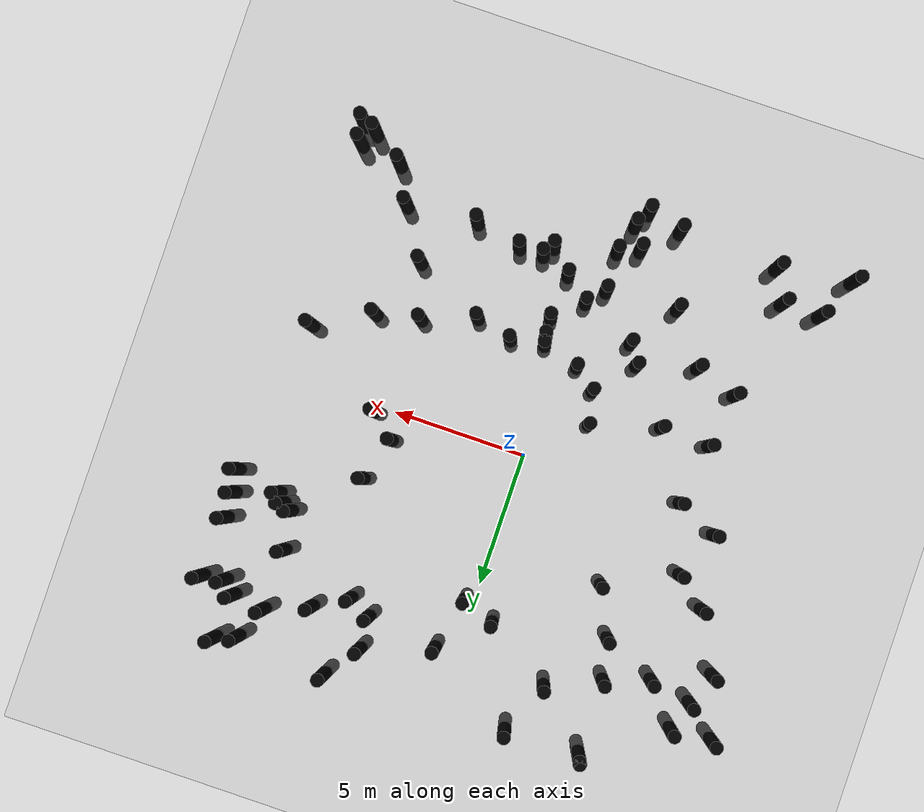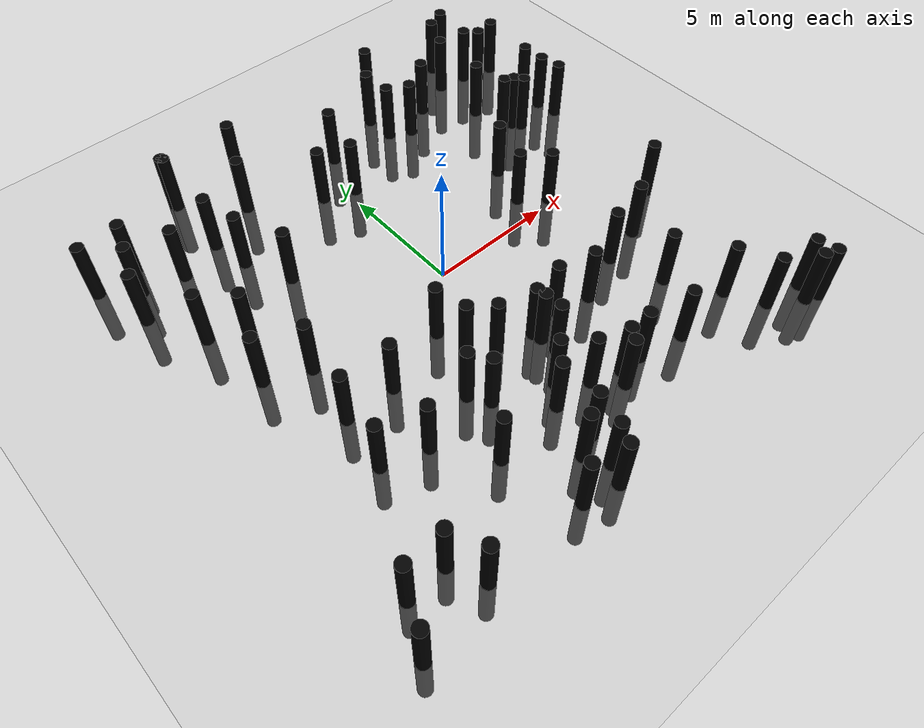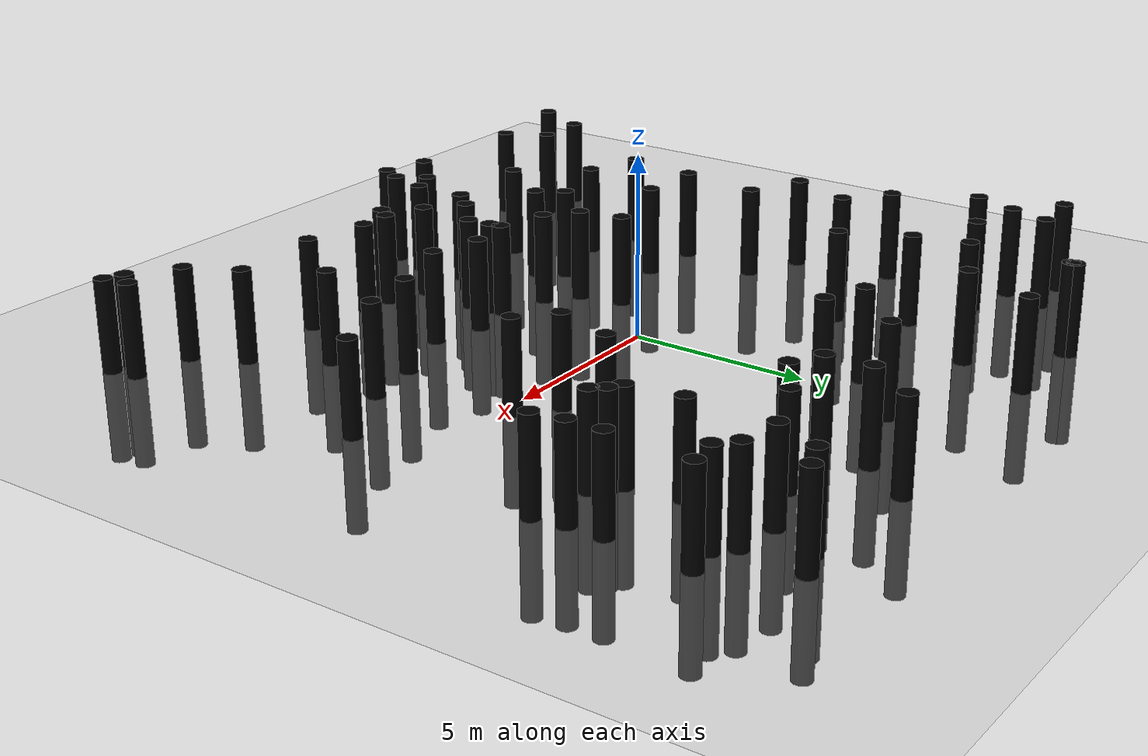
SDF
<?xml version="1.0"?>

<sdf version="1.6">
    <world name="world_high_density">
        <physics name="4ms" type="ignored">
            <max_step_size>0.004</max_step_size>
            <real_time_factor>1.0</real_time_factor>
        </physics>
        <plugin
            filename="ignition-gazebo-physics-system"
            name="ignition::gazebo::systems::Physics">
        </plugin>
        <plugin
            filename="ignition-gazebo-scene-broadcaster-system"
            name="ignition::gazebo::systems::SceneBroadcaster">
        </plugin>
        <plugin
            filename="ignition-gazebo-user-commands-system"
            name="ignition::gazebo::systems::UserCommands">
        </plugin>
        <plugin
            filename="ignition-gazebo-sensors-system"
            name="ignition::gazebo::systems::Sensors">
            <render_engine>ogre2</render_engine>
        </plugin>

        <include>
            <uri>model://ground_plane</uri>
        </include>
        <include>
            <uri>model://pole</uri>
            <name>pole1</name>
            <pose>-6.85 2.31 0 0 0 0</pose>
        </include>
        <include>
            <uri>model://pole</uri>
            <name>pole2</name>
            <pose>-8.01 3.27 0 0 0 0</pose>
        </include>
        <include>
            <uri>model://pole</uri>
            <name>pole3</name>
            <pose>0.56 -4.09 0 0 0 0</pose>
        </include>
        <include>
            <uri>model://pole</uri>
            <name>pole4</name>
            <pose>5.32 2.69 0 0 0 0</pose>
        </include>
        <include>
            <uri>model://pole</uri>
            <name>pole5</name>
            <pose>1.38 -7.62 0 0 0 0</pose>
        </include>
        <include>
            <uri>model://pole</uri>
            <name>pole6</name>
            <pose>4.33 6.99 0 0 0 0</pose>
        </include>
        <include>
            <uri>model://pole</uri>
            <name>pole7</name>
            <pose>9.77 7.95 0 0 0 0</pose>
        </include>
        <include>
            <uri>model://pole</uri>
            <name>pole8</name>
            <pose>9.63 5.65 0 0 0 0</pose>
        </include>
        <include>
            <uri>model://pole</uri>
            <name>pole9</name>
            <pose>3.21 -4.25 0 0 0 0</pose>
        </include>
        <include>
            <uri>model://pole</uri>
            <name>pole10</name>
            <pose>5.59 7.74 0 0 0 0</pose>
        </include>
        <include>
            <uri>model://pole</uri>
            <name>pole11</name>
            <pose>-0.37 -6.05 0 0 0 0</pose>
        </include>
        <include>
            <uri>model://pole</uri>
            <name>pole12</name>
            <pose>-2.42 -5.16 0 0 0 0</pose>
        </include>
        <include>
            <uri>model://pole</uri>
            <name>pole13</name>
            <pose>7.02 -7.35 0 0 0 0</pose>
        </include>
        <include>
            <uri>model://pole</uri>
            <name>pole14</name>
            <pose>9.79 3.84 0 0 0 0</pose>
        </include>
        <include>
            <uri>model://pole</uri>
            <name>pole15</name>
            <pose>8.92 7.82 0 0 0 0</pose>
        </include>
        <include>
            <uri>model://pole</uri>
            <name>pole16</name>
            <pose>5.17 -3.53 0 0 0 0</pose>
        </include>
        <include>
            <uri>model://pole</uri>
            <name>pole17</name>
            <pose>2.58 -7.21 0 0 0 0</pose>
        </include>
        <include>
            <uri>model://pole</uri>
            <name>pole18</name>
            <pose>-6.64 -9.5 0 0 0 0</pose>
        </include>
        <include>
            <uri>model://pole</uri>
            <name>pole19</name>
            <pose>4.79 1.02 0 0 0 0</pose>
        </include>
        <include>
            <uri>model://pole</uri>
            <name>pole20</name>
            <pose>7.24 8.4 0 0 0 0</pose>
        </include>
        <include>
            <uri>model://pole</uri>
            <name>pole21</name>
            <pose>0.56 -6.8 0 0 0 0</pose>
        </include>
        <include>
            <uri>model://pole</uri>
            <name>pole22</name>
            <pose>-9.85 7.67 0 0 0 0</pose>
        </include>
        <include>
            <uri>model://pole</uri>
            <name>pole23</name>
            <pose>-7.07 6.31 0 0 0 0</pose>
        </include>
        <include>
            <uri>model://pole</uri>
            <name>pole24</name>
            <pose>-6.02 -0.18 0 0 0 0</pose>
        </include>
        <include>
            <uri>model://pole</uri>
            <name>pole25</name>
            <pose>0.35 5.71 0 0 0 0</pose>
        </include>
        <include>
            <uri>model://pole</uri>
            <name>pole26</name>
            <pose>6.82 -3.18 0 0 0 0</pose>
        </include>
        <include>
            <uri>model://pole</uri>
            <name>pole27</name>
            <pose>-0.95 -6.7 0 0 0 0</pose>
        </include>
        <include>
            <uri>model://pole</uri>
            <name>pole28</name>
            <pose>8.6 9.95 0 0 0 0</pose>
        </include>
        <include>
            <uri>model://pole</uri>
            <name>pole29</name>
            <pose>-1.67 -8.53 0 0 0 0</pose>
        </include>
        <include>
            <uri>model://pole</uri>
            <name>pole30</name>
            <pose>-4.22 3.6 0 0 0 0</pose>
        </include>
        <include>
            <uri>model://pole</uri>
            <name>pole31</name>
            <pose>5.86 -5.52 0 0 0 0</pose>
        </include>
        <include>
            <uri>model://pole</uri>
            <name>pole32</name>
            <pose>-5.44 9.78 0 0 0 0</pose>
        </include>
        <include>
            <uri>model://pole</uri>
            <name>pole33</name>
            <pose>8.92 -2.05 0 0 0 0</pose>
        </include>
        <include>
            <uri>model://pole</uri>
            <name>pole34</name>
            <pose>-4.48 -2.59 0 0 0 0</pose>
        </include>
        <include>
            <uri>model://pole</uri>
            <name>pole35</name>
            <pose>0.82 7.73 0 0 0 0</pose>
        </include>
        <include>
            <uri>model://pole</uri>
            <name>pole36</name>
            <pose>7.82 4.47 0 0 0 0</pose>
        </include>
        <include>
            <uri>model://pole</uri>
            <name>pole37</name>
            <pose>-6.65 -4.57 0 0 0 0</pose>
        </include>
        <include>
            <uri>model://pole</uri>
            <name>pole38</name>
            <pose>-7.57 0.53 0 0 0 0</pose>
        </include>
        <include>
            <uri>model://pole</uri>
            <name>pole39</name>
            <pose>-9.14 5.42 0 0 0 0</pose>
        </include>
        <include>
            <uri>model://pole</uri>
            <name>pole40</name>
            <pose>-6.36 -2.51 0 0 0 0</pose>
        </include>
        <include>
            <uri>model://pole</uri>
            <name>pole41</name>
            <pose>-1.2 -9.32 0 0 0 0</pose>
        </include>
        <include>
            <uri>model://pole</uri>
            <name>pole42</name>
            <pose>1.67 -7.21 0 0 0 0</pose>
        </include>
        <include>
            <uri>model://pole</uri>
            <name>pole43</name>
            <pose>-8.31 7.77 0 0 0 0</pose>
        </include>
        <include>
            <uri>model://pole</uri>
            <name>pole44</name>
            <pose>1.82 -3.88 0 0 0 0</pose>
        </include>
        <include>
            <uri>model://pole</uri>
            <name>pole45</name>
            <pose>3.42 8.65 0 0 0 0</pose>
        </include>
        <include>
            <uri>model://pole</uri>
            <name>pole46</name>
            <pose>9.33 -8.97 0 0 0 0</pose>
        </include>
        <include>
            <uri>model://pole</uri>
            <name>pole47</name>
            <pose>-8.7 -8.35 0 0 0 0</pose>
        </include>
        <include>
            <uri>model://pole</uri>
            <name>pole48</name>
            <pose>7.46 4.66 0 0 0 0</pose>
        </include>
        <include>
            <uri>model://pole</uri>
            <name>pole49</name>
            <pose>-0.89 -8.19 0 0 0 0</pose>
        </include>
        <include>
            <uri>model://pole</uri>
            <name>pole50</name>
            <pose>-1.65 -3.05 0 0 0 0</pose>
        </include>
        <include>
            <uri>model://pole</uri>
            <name>pole51</name>
            <pose>8.08 4.16 0 0 0 0</pose>
        </include>
        <include>
            <uri>model://pole</uri>
            <name>pole52</name>
            <pose>4.36 9.94 0 0 0 0</pose>
        </include>
        <include>
            <uri>model://pole</uri>
            <name>pole53</name>
            <pose>-5.4 6.88 0 0 0 0</pose>
        </include>
        <include>
            <uri>model://pole</uri>
            <name>pole54</name>
            <pose>-8.67 6.65 0 0 0 0</pose>
        </include>
        <include>
            <uri>model://pole</uri>
            <name>pole55</name>
            <pose>-5.4 9.68 0 0 0 0</pose>
        </include>
        <include>
            <uri>model://pole</uri>
            <name>pole56</name>
            <pose>-0.82 -3.7 0 0 0 0</pose>
        </include>
        <include>
            <uri>model://pole</uri>
            <name>pole57</name>
            <pose>-3.65 -6.9 0 0 0 0</pose>
        </include>
        <include>
            <uri>model://pole</uri>
            <name>pole58</name>
            <pose>-0.87 6.18 0 0 0 0</pose>
        </include>
        <include>
            <uri>model://pole</uri>
            <name>pole59</name>
            <pose>-5.05 -5.09 0 0 0 0</pose>
        </include>
        <include>
            <uri>model://pole</uri>
            <name>pole60</name>
            <pose>-5.07 5.38 0 0 0 0</pose>
        </include>
        <include>
            <uri>model://pole</uri>
            <name>pole61</name>
            <pose>-2.57 9.75 0 0 0 0</pose>
        </include>
        <include>
            <uri>model://pole</uri>
            <name>pole62</name>
            <pose>-3.41 7.76 0 0 0 0</pose>
        </include>
        <include>
            <uri>model://pole</uri>
            <name>pole63</name>
            <pose>7.81 9.64 0 0 0 0</pose>
        </include>
        <include>
            <uri>model://pole</uri>
            <name>pole64</name>
            <pose>8.45 8.25 0 0 0 0</pose>
        </include>
        <include>
            <uri>model://pole</uri>
            <name>pole65</name>
            <pose>9.46 -9.71 0 0 0 0</pose>
        </include>
        <include>
            <uri>model://pole</uri>
            <name>pole66</name>
            <pose>7.74 -8.71 0 0 0 0</pose>
        </include>
        <include>
            <uri>model://pole</uri>
            <name>pole67</name>
            <pose>-1.53 -9.94 0 0 0 0</pose>
        </include>
        <include>
            <uri>model://pole</uri>
            <name>pole68</name>
            <pose>9.65 4.69 0 0 0 0</pose>
        </include>
        <include>
            <uri>model://pole</uri>
            <name>pole69</name>
            <pose>-7.24 -8.33 0 0 0 0</pose>
        </include>
        <include>
            <uri>model://pole</uri>
            <name>pole70</name>
            <pose>8.95 -9.52 0 0 0 0</pose>
        </include>
        <include>
            <uri>model://pole</uri>
            <name>pole71</name>
            <pose>-2.88 -4.45 0 0 0 0</pose>
        </include>
        <include>
            <uri>model://pole</uri>
            <name>pole72</name>
            <pose>-1.91 -1.83 0 0 0 0</pose>
        </include>
        <include>
            <uri>model://pole</uri>
            <name>pole73</name>
            <pose>-2.84 -9.64 0 0 0 0</pose>
        </include>
        <include>
            <uri>model://pole</uri>
            <name>pole74</name>
            <pose>-9.45 -9.92 0 0 0 0</pose>
        </include>
        <include>
            <uri>model://pole</uri>
            <name>pole75</name>
            <pose>0.67 -5.11 0 0 0 0</pose>
        </include>
        <include>
            <uri>model://pole</uri>
            <name>pole76</name>
            <pose>5.71 0.22 0 0 0 0</pose>
        </include>
        <include>
            <uri>model://pole</uri>
            <name>pole77</name>
            <pose>0.62 -4.43 0 0 0 0</pose>
        </include>
        <include>
            <uri>model://pole</uri>
            <name>pole78</name>
            <pose>3.49 7.43 0 0 0 0</pose>
        </include>
        <include>
            <uri>model://pole</uri>
            <name>pole79</name>
            <pose>7.22 6.1 0 0 0 0</pose>
        </include>
        <include>
            <uri>model://pole</uri>
            <name>pole80</name>
            <pose>4.34 -7.59 0 0 0 0</pose>
        </include>

    </world>
</sdf>

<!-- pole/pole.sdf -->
<sdf version="1.9">
    <model name="pole">
        <link name="pole_link">

            <visual name='visual'>
                <geometry>
                    <cylinder>
                        <radius>0.25</radius>
                        <length>5.0</length>
                    </cylinder>
                </geometry>
                <material>
                    <diffuse>0 0 0 1</diffuse>
                </material>
            </visual>

            <inertial>
                <mass>0.005</mass>
                <inertia>
                    <ixx>8.33e-06</ixx>
                    <ixy>0</ixy>
                    <ixz>0</ixz>
                    <iyy>8.33e-06</iyy>
                    <iyz>0</iyz>
                    <izz>8.33e-06</izz>
                </inertia>
            </inertial>

            <collision name="collision">
                <geometry>
                    <cylinder>
                        <radius>0.25</radius>
                        <length>5.0</length>
                    </cylinder>
                </geometry>
            </collision>
        </link>

    </model>
</sdf>
